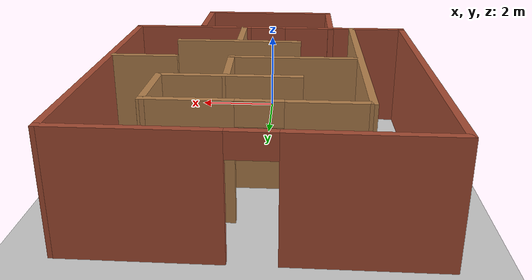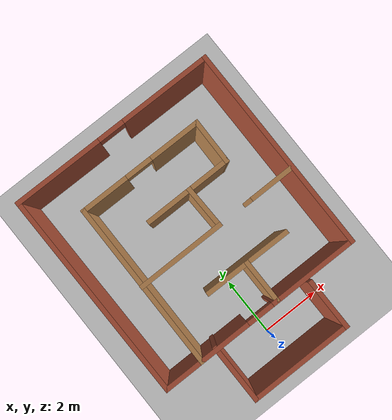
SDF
<sdf version="1.7">
 <world name="default">
  <light name="sun" type="directional">
   <pose>0 0 10 0 -0 0</pose>
   <diffuse>0.8 0.8 0.8 1</diffuse>
   <specular>0.2 0.2 0.2 1</specular>
   <attenuation>
    <range>1000</range>
    <constant>0.9</constant>
    <linear>0.01</linear>
    <quadratic>0.001</quadratic>
   </attenuation>
   <direction>-0.5 0.1 -0.9</direction>
   <spot><inner_angle>0</inner_angle><outer_angle>0</outer_angle><falloff>0</falloff></spot>
  </light>
  <model name="ground_plane">
   <static>1</static>
   <link name="link">
    <collision name="collision">
     <geometry><plane><normal>0 0 1</normal><size>100 100</size></plane></geometry>
     <surface>
      <contact><collide_bitmask>65535</collide_bitmask></contact>
      <friction><ode><mu>100</mu><mu2>50</mu2></ode></friction>
     </surface>
    </collision>
    <visual name="visual">
     <cast_shadows>0</cast_shadows>
     <geometry><plane><normal>0 0 1</normal><size>100 100</size></plane></geometry>
     <material>
      <script><uri>file://media/materials/scripts/gazebo.material</uri><name>Gazebo/Grey</name></script>
     </material>
    </visual>
   </link>
  </model>
  <gravity>0 0 -9.8</gravity>
  <magnetic_field>6e-06 2.3e-05 -4.2e-05</magnetic_field>
  <atmosphere type="adiabatic"/>
  <physics type="ode">
   <max_step_size>0.001</max_step_size>
   <real_time_factor>1</real_time_factor>
   <real_time_update_rate>1000</real_time_update_rate>
  </physics>
  <scene><ambient>0.4 0.4 0.4 1</ambient><background>0.7 0.7 0.7 1</background><shadows>1</shadows></scene>
  <audio><device>default</device></audio>
  <spherical_coordinates>
   <surface_model>EARTH_WGS84</surface_model>
   <latitude_deg>0</latitude_deg>
   <longitude_deg>0</longitude_deg>
   <elevation>0</elevation>
   <heading_deg>0</heading_deg>
  </spherical_coordinates>
  <model name="my_maze2">
   <pose>0.043656 3.44225 0 0 -0 0</pose>
   <link name="Wall_1">
    <pose>4.8e-05 4.33403 0 0 -0 -0.005814</pose>
    <visual name="Wall_1_Visual_0">
     <pose>-2.01282 0 1.25 0 -0 0</pose>
     <geometry><box><size>3.04355 0.15 2.5</size></box></geometry>
     <material>
      <script><uri>file://media/materials/scripts/gazebo.material</uri><name>Gazebo/Bricks</name></script>
      <ambient>1 1 1 1</ambient>
     </material>
     <meta><layer>0</layer></meta>
    </visual>
    <collision name="Wall_1_Collision_0">
     <geometry><box><size>3.04355 0.15 2.5</size></box></geometry>
     <pose>-2.01282 0 1.25 0 -0 0</pose>
    </collision>
    <visual name="Wall_1_Visual_1">
     <pose>1.97177 0 1.25 0 -0 0</pose>
     <geometry><box><size>3.12564 0.15 2.5</size></box></geometry>
     <material>
      <script><uri>file://media/materials/scripts/gazebo.material</uri><name>Gazebo/Bricks</name></script>
      <ambient>1 1 1 1</ambient>
     </material>
     <meta><layer>0</layer></meta>
    </visual>
    <collision name="Wall_1_Collision_1">
     <geometry><box><size>3.12564 0.15 2.5</size></box></geometry>
     <pose>1.97177 0 1.25 0 -0 0</pose>
    </collision>
    <visual name="Wall_1_Visual_2">
     <pose>-0.041045 0 2.25 0 -0 0</pose>
     <geometry><box><size>0.9 0.15 0.5</size></box></geometry>
     <material>
      <script><uri>file://media/materials/scripts/gazebo.material</uri><name>Gazebo/Bricks</name></script>
      <ambient>1 1 1 1</ambient>
     </material>
     <meta><layer>0</layer></meta>
    </visual>
    <collision name="Wall_1_Collision_2">
     <geometry><box><size>0.9 0.15 0.5</size></box></geometry>
     <pose>-0.041045 0 2.25 0 -0 0</pose>
    </collision>
   </link>
   <link name="Wall_10">
    <collision name="Wall_10_Collision">
     <geometry><box><size>5.68127 0.15 2.5</size></box></geometry>
     <pose>0 0 1.25 0 -0 0</pose>
    </collision>
    <visual name="Wall_10_Visual">
     <pose>0 0 1.25 0 -0 0</pose>
     <geometry><box><size>5.68127 0.15 2.5</size></box></geometry>
     <material>
      <script><uri>file://media/materials/scripts/gazebo.material</uri><name>Gazebo/Wood</name></script>
      <ambient>1 1 1 1</ambient>
     </material>
     <meta><layer>0</layer></meta>
    </visual>
    <pose>-2.12193 0.220808 0 0 -0 -1.57443</pose>
   </link>
   <link name="Wall_12">
    <collision name="Wall_12_Collision">
     <geometry><box><size>2.98609 0.15 2.5</size></box></geometry>
     <pose>0 0 1.25 0 -0 0</pose>
    </collision>
    <visual name="Wall_12_Visual">
     <pose>0 0 1.25 0 -0 0</pose>
     <geometry><box><size>2.98609 0.15 2.5</size></box></geometry>
     <material>
      <script><uri>file://media/materials/scripts/gazebo.material</uri><name>Gazebo/Wood</name></script>
      <ambient>1 1 1 1</ambient>
     </material>
     <meta><layer>0</layer></meta>
    </visual>
    <pose>0.673853 -1.14691 0 0 -0 -0.007092</pose>
   </link>
   <link name="Wall_14">
    <collision name="Wall_14_Collision">
     <geometry><box><size>1.5 0.15 2.5</size></box></geometry>
     <pose>0 0 1.25 0 -0 0</pose>
    </collision>
    <visual name="Wall_14_Visual">
     <pose>0 0 1.25 0 -0 0</pose>
     <geometry><box><size>1.5 0.15 2.5</size></box></geometry>
     <material>
      <script><uri>file://media/materials/scripts/gazebo.material</uri><name>Gazebo/Wood</name></script>
      <ambient>1 1 1 1</ambient>
     </material>
     <meta><layer>0</layer></meta>
    </visual>
    <pose>0.663796 -1.83197 0 0 -0 -1.5708</pose>
   </link>
   <link name="Wall_16">
    <collision name="Wall_16_Collision">
     <geometry><box><size>1.5 0.15 2.5</size></box></geometry>
     <pose>0 0 1.25 0 -0 0</pose>
    </collision>
    <visual name="Wall_16_Visual">
     <pose>0 0 1.25 0 -0 0</pose>
     <geometry><box><size>1.5 0.15 2.5</size></box></geometry>
     <material>
      <script><uri>file://media/materials/scripts/gazebo.material</uri><name>Gazebo/Wood</name></script>
      <ambient>1 1 1 1</ambient>
     </material>
     <meta><layer>0</layer></meta>
    </visual>
    <pose>2.66629 0.210751 0 0 -0 0</pose>
   </link>
   <link name="Wall_18">
    <collision name="Wall_18_Collision">
     <geometry><box><size>3 0.15 2.5</size></box></geometry>
     <pose>0 0 1.25 0 -0 0</pose>
    </collision>
    <visual name="Wall_18_Visual">
     <pose>0 0 1.25 0 -0 0</pose>
     <geometry><box><size>3 0.15 2.5</size></box></geometry>
     <material>
      <script><uri>file://media/materials/scripts/gazebo.material</uri><name>Gazebo/Wood</name></script>
      <ambient>1 1 1 1</ambient>
     </material>
     <meta><layer>0</layer></meta>
    </visual>
    <pose>-0.70699 0.210751 0 0 -0 0</pose>
   </link>
   <link name="Wall_19">
    <collision name="Wall_19_Collision">
     <geometry><box><size>1.49768 0.15 2.5</size></box></geometry>
     <pose>0 0 1.25 0 -0 0</pose>
    </collision>
    <visual name="Wall_19_Visual">
     <pose>0 0 1.25 0 -0 0</pose>
     <geometry><box><size>1.49768 0.15 2.5</size></box></geometry>
     <material>
      <script><uri>file://media/materials/scripts/gazebo.material</uri><name>Gazebo/Wood</name></script>
      <ambient>1 1 1 1</ambient>
     </material>
     <meta><layer>0</layer></meta>
    </visual>
    <pose>0.70096 0.884555 0 0 -0 1.5961</pose>
   </link>
   <link name="Wall_2">
    <collision name="Wall_2_Collision">
     <geometry><box><size>7.00885 0.15 2.5</size></box></geometry>
     <pose>0 0 1.25 0 -0 0</pose>
    </collision>
    <visual name="Wall_2_Visual">
     <pose>0 0 1.25 0 -0 0</pose>
     <geometry><box><size>7.00885 0.15 2.5</size></box></geometry>
     <material>
      <script><uri>file://media/materials/scripts/gazebo.material</uri><name>Gazebo/Bricks</name></script>
      <ambient>1 1 1 1</ambient>
     </material>
     <meta><layer>0</layer></meta>
    </visual>
    <pose>3.44953 0.884555 0 0 -0 -1.57373</pose>
   </link>
   <link name="Wall_23">
    <collision name="Wall_23_Collision">
     <geometry><box><size>2 0.15 2.5</size></box></geometry>
     <pose>0 0 1.25 0 -0 0</pose>
    </collision>
    <visual name="Wall_23_Visual">
     <pose>0 0 1.25 0 -0 0</pose>
     <geometry><box><size>2 0.15 2.5</size></box></geometry>
     <material>
      <script><uri>file://media/materials/scripts/gazebo.material</uri><name>Gazebo/Bricks</name></script>
      <ambient>1 1 1 1</ambient>
     </material>
     <meta><layer>0</layer></meta>
    </visual>
    <pose>-1.58892 -3.42958 0 0 -0 -1.5708</pose>
   </link>
   <link name="Wall_24">
    <collision name="Wall_24_Collision">
     <geometry><box><size>3.5 0.15 2.5</size></box></geometry>
     <pose>0 0 1.25 0 -0 0</pose>
    </collision>
    <visual name="Wall_24_Visual">
     <pose>0 0 1.25 0 -0 0</pose>
     <geometry><box><size>3.5 0.15 2.5</size></box></geometry>
     <material>
      <script><uri>file://media/materials/scripts/gazebo.material</uri><name>Gazebo/Bricks</name></script>
      <ambient>1 1 1 1</ambient>
     </material>
     <meta><layer>0</layer></meta>
    </visual>
    <pose>0.086076 -4.35458 0 0 -0 0</pose>
   </link>
   <link name="Wall_25">
    <collision name="Wall_25_Collision">
     <geometry><box><size>1.75 0.15 2.5</size></box></geometry>
     <pose>0 0 1.25 0 -0 0</pose>
    </collision>
    <visual name="Wall_25_Visual">
     <pose>0 0 1.25 0 -0 0</pose>
     <geometry><box><size>1.75 0.15 2.5</size></box></geometry>
     <material>
      <script><uri>file://media/materials/scripts/gazebo.material</uri><name>Gazebo/Bricks</name></script>
      <ambient>1 1 1 1</ambient>
     </material>
     <meta><layer>0</layer></meta>
    </visual>
    <pose>1.76108 -3.55458 0 0 -0 1.5708</pose>
   </link>
   <link name="Wall_3">
    <pose>0.014469 -2.54481 0 0 -0 3.14159</pose>
    <visual name="Wall_3_Visual_0">
     <pose>-1.9879 0 1.25 0 -0 0</pose>
     <geometry><box><size>3.02419 0.15 2.5</size></box></geometry>
     <material>
      <script><uri>file://media/materials/scripts/gazebo.material</uri><name>Gazebo/Bricks</name></script>
      <ambient>1 1 1 1</ambient>
     </material>
     <meta><layer>0</layer></meta>
    </visual>
    <collision name="Wall_3_Collision_0">
     <geometry><box><size>3.02419 0.15 2.5</size></box></geometry>
     <pose>-1.9879 0 1.25 0 -0 0</pose>
    </collision>
    <visual name="Wall_3_Visual_1">
     <pose>1.9621 0 1.25 0 -0 0</pose>
     <geometry><box><size>3.07581 0.15 2.5</size></box></geometry>
     <material>
      <script><uri>file://media/materials/scripts/gazebo.material</uri><name>Gazebo/Bricks</name></script>
      <ambient>1 1 1 1</ambient>
     </material>
     <meta><layer>0</layer></meta>
    </visual>
    <collision name="Wall_3_Collision_1">
     <geometry><box><size>3.07581 0.15 2.5</size></box></geometry>
     <pose>1.9621 0 1.25 0 -0 0</pose>
    </collision>
    <visual name="Wall_3_Visual_2">
     <pose>-0.025806 0 2.25 0 -0 0</pose>
     <geometry><box><size>0.9 0.15 0.5</size></box></geometry>
     <material>
      <script><uri>file://media/materials/scripts/gazebo.material</uri><name>Gazebo/Bricks</name></script>
      <ambient>1 1 1 1</ambient>
     </material>
     <meta><layer>0</layer></meta>
    </visual>
    <collision name="Wall_3_Collision_2">
     <geometry><box><size>0.9 0.15 0.5</size></box></geometry>
     <pose>-0.025806 0 2.25 0 -0 0</pose>
    </collision>
   </link>
   <link name="Wall_4">
    <collision name="Wall_4_Collision">
     <geometry><box><size>7.0289 0.15 2.5</size></box></geometry>
     <pose>0 0 1.25 0 -0 0</pose>
    </collision>
    <visual name="Wall_4_Visual">
     <pose>0 0 1.25 0 -0 0</pose>
     <geometry><box><size>7.0289 0.15 2.5</size></box></geometry>
     <material>
      <script><uri>file://media/materials/scripts/gazebo.material</uri><name>Gazebo/Bricks</name></script>
      <ambient>1 1 1 1</ambient>
     </material>
     <meta><layer>0</layer></meta>
    </visual>
    <pose>-3.43501 0.894612 0 0 -0 1.57791</pose>
   </link>
   <link name="Wall_6">
    <pose>-0.020065 2.97637 0 0 -0 -0.004808</pose>
    <visual name="Wall_6_Visual_0">
     <pose>-1.33841 0 1.25 0 -0 0</pose>
     <geometry><box><size>1.657 0.15 2.5</size></box></geometry>
     <material>
      <script><uri>file://media/materials/scripts/gazebo.material</uri><name>Gazebo/Wood</name></script>
      <ambient>1 1 1 1</ambient>
     </material>
     <meta><layer>0</layer></meta>
    </visual>
    <collision name="Wall_6_Collision_0">
     <geometry><box><size>1.657 0.15 2.5</size></box></geometry>
     <pose>-1.33841 0 1.25 0 -0 0</pose>
    </collision>
    <visual name="Wall_6_Visual_1">
     <pose>1.2785 0 1.25 0 -0 0</pose>
     <geometry><box><size>1.77681 0.15 2.5</size></box></geometry>
     <material>
      <script><uri>file://media/materials/scripts/gazebo.material</uri><name>Gazebo/Wood</name></script>
      <ambient>1 1 1 1</ambient>
     </material>
     <meta><layer>0</layer></meta>
    </visual>
    <collision name="Wall_6_Collision_1">
     <geometry><box><size>1.77681 0.15 2.5</size></box></geometry>
     <pose>1.2785 0 1.25 0 -0 0</pose>
    </collision>
    <visual name="Wall_6_Visual_2">
     <pose>-0.059905 0 2.25 0 -0 0</pose>
     <geometry><box><size>0.9 0.15 0.5</size></box></geometry>
     <material>
      <script><uri>file://media/materials/scripts/gazebo.material</uri><name>Gazebo/Wood</name></script>
      <ambient>1 1 1 1</ambient>
     </material>
     <meta><layer>0</layer></meta>
    </visual>
    <collision name="Wall_6_Collision_2">
     <geometry><box><size>0.9 0.15 0.5</size></box></geometry>
     <pose>-0.059905 0 2.25 0 -0 0</pose>
    </collision>
   </link>
   <link name="Wall_7">
    <collision name="Wall_7_Collision">
     <geometry><box><size>1.55852 0.15 2.5</size></box></geometry>
     <pose>0 0 1.25 0 -0 0</pose>
    </collision>
    <visual name="Wall_7_Visual">
     <pose>0 0 1.25 0 -0 0</pose>
     <geometry><box><size>1.55852 0.15 2.5</size></box></geometry>
     <material>
      <script><uri>file://media/materials/scripts/gazebo.material</uri><name>Gazebo/Wood</name></script>
      <ambient>1 1 1 1</ambient>
     </material>
     <meta><layer>0</layer></meta>
    </visual>
    <pose>2.06169 2.26234 0 0 -0 -1.58508</pose>
   </link>
   <link name="Wall_8">
    <collision name="Wall_8_Collision">
     <geometry><box><size>3 0.15 2.5</size></box></geometry>
     <pose>0 0 1.25 0 -0 0</pose>
    </collision>
    <visual name="Wall_8_Visual">
     <pose>0 0 1.25 0 -0 0</pose>
     <geometry><box><size>3 0.15 2.5</size></box></geometry>
     <material>
      <script><uri>file://media/materials/scripts/gazebo.material</uri><name>Gazebo/Wood</name></script>
      <ambient>1 1 1 1</ambient>
     </material>
     <meta><layer>0</layer></meta>
    </visual>
    <pose>0.626633 1.55836 0 0 -0 3.14159</pose>
   </link>
   <static>1</static>
  </model>
 </world>
</sdf>
